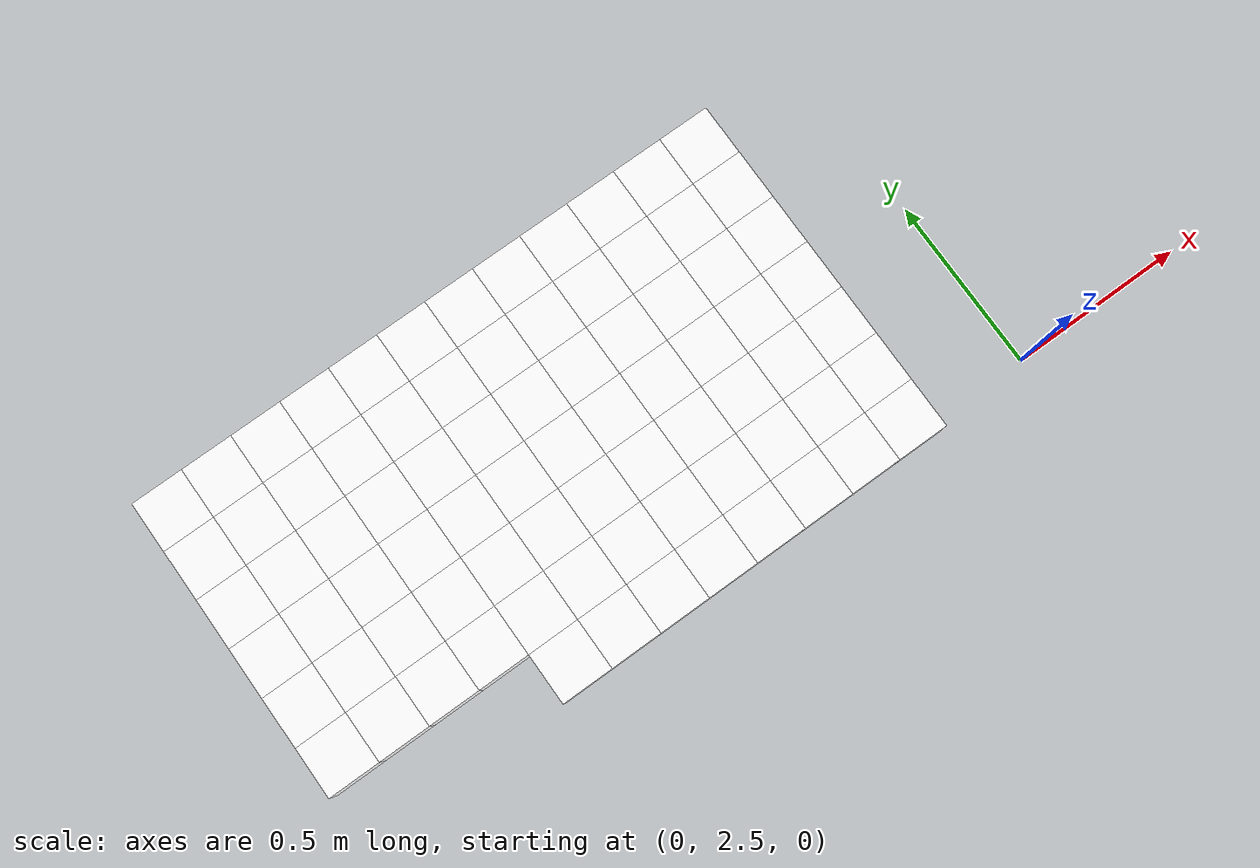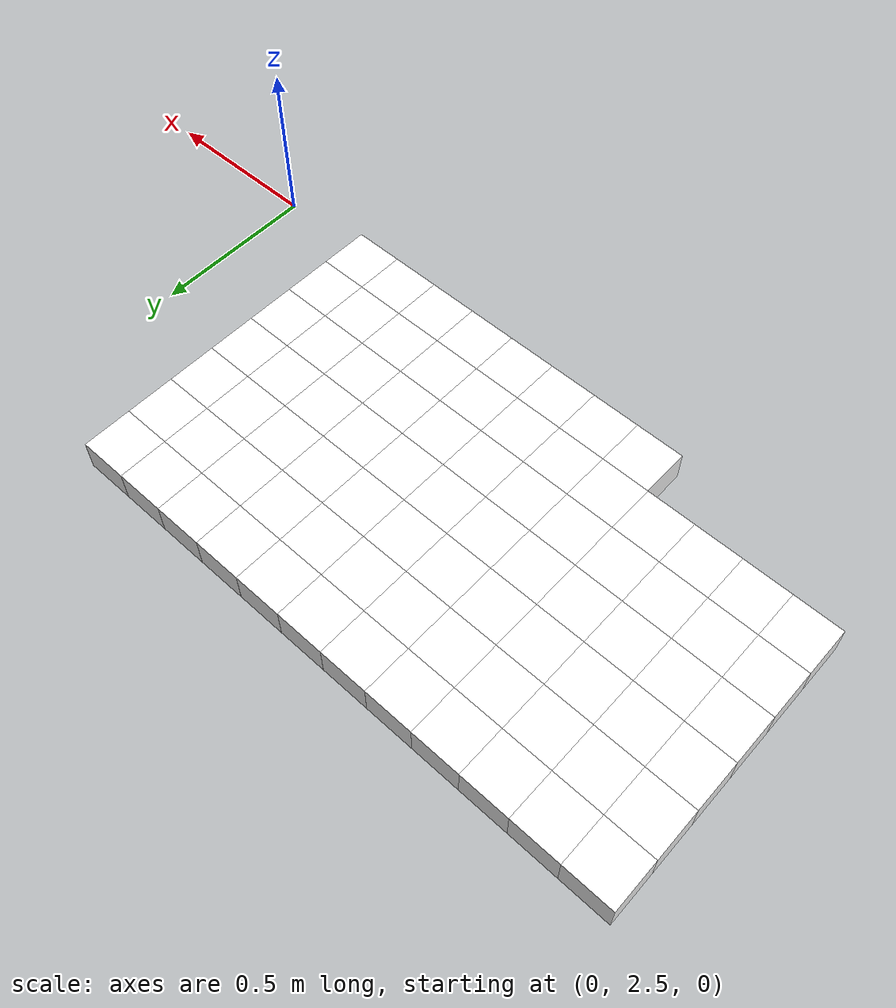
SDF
<sdf version="1.7">
 <world name="default">
  <include><uri>model://sun</uri></include>
  <model name="static_environment">
   <static>true</static>
   <link name="region_264">
    <pose>-1.4 2.5499999999999994 0.0 0.0 0.0 0.0</pose>
    <collision name="region_264_collision">
     <geometry><box><size>0.15 0.15 0.1</size></box></geometry>
     <surface><friction><ode><mu>1.0</mu><mu2>1.0</mu2></ode></friction></surface>
    </collision>
    <visual name="region_264_visual">
     <geometry><box><size>0.15 0.15 0.1</size></box></geometry>
     <material><ambient>1.0 1.0 1.0 1.0</ambient><diffuse>1.0 1.0 1.0 1.0</diffuse></material>
    </visual>
   </link>
   <link name="region_265">
    <pose>-1.25 2.5499999999999994 0.0 0.0 0.0 0.0</pose>
    <collision name="region_265_collision">
     <geometry><box><size>0.15 0.15 0.1</size></box></geometry>
     <surface><friction><ode><mu>1.0</mu><mu2>1.0</mu2></ode></friction></surface>
    </collision>
    <visual name="region_265_visual">
     <geometry><box><size>0.15 0.15 0.1</size></box></geometry>
     <material><ambient>1.0 1.0 1.0 1.0</ambient><diffuse>1.0 1.0 1.0 1.0</diffuse></material>
    </visual>
   </link>
   <link name="region_266">
    <pose>-1.1 2.5499999999999994 0.0 0.0 0.0 0.0</pose>
    <collision name="region_266_collision">
     <geometry><box><size>0.15 0.15 0.1</size></box></geometry>
     <surface><friction><ode><mu>1.0</mu><mu2>1.0</mu2></ode></friction></surface>
    </collision>
    <visual name="region_266_visual">
     <geometry><box><size>0.15 0.15 0.1</size></box></geometry>
     <material><ambient>1.0 1.0 1.0 1.0</ambient><diffuse>1.0 1.0 1.0 1.0</diffuse></material>
    </visual>
   </link>
   <link name="region_267">
    <pose>-0.95 2.5499999999999994 0.0 0.0 0.0 0.0</pose>
    <collision name="region_267_collision">
     <geometry><box><size>0.15 0.15 0.1</size></box></geometry>
     <surface><friction><ode><mu>1.0</mu><mu2>1.0</mu2></ode></friction></surface>
    </collision>
    <visual name="region_267_visual">
     <geometry><box><size>0.15 0.15 0.1</size></box></geometry>
     <material><ambient>1.0 1.0 1.0 1.0</ambient><diffuse>1.0 1.0 1.0 1.0</diffuse></material>
    </visual>
   </link>
   <link name="region_268">
    <pose>-0.8 2.5499999999999994 0.0 0.0 0.0 0.0</pose>
    <collision name="region_268_collision">
     <geometry><box><size>0.15 0.15 0.1</size></box></geometry>
     <surface><friction><ode><mu>1.0</mu><mu2>1.0</mu2></ode></friction></surface>
    </collision>
    <visual name="region_268_visual">
     <geometry><box><size>0.15 0.15 0.1</size></box></geometry>
     <material><ambient>1.0 1.0 1.0 1.0</ambient><diffuse>1.0 1.0 1.0 1.0</diffuse></material>
    </visual>
   </link>
   <link name="region_269">
    <pose>-0.6500000000000001 2.5499999999999994 0.0 0.0 0.0 0.0</pose>
    <collision name="region_269_collision">
     <geometry><box><size>0.15 0.15 0.1</size></box></geometry>
     <surface><friction><ode><mu>1.0</mu><mu2>1.0</mu2></ode></friction></surface>
    </collision>
    <visual name="region_269_visual">
     <geometry><box><size>0.15 0.15 0.1</size></box></geometry>
     <material><ambient>1.0 1.0 1.0 1.0</ambient><diffuse>1.0 1.0 1.0 1.0</diffuse></material>
    </visual>
   </link>
   <link name="region_270">
    <pose>-0.5000000000000002 2.5499999999999994 0.0 0.0 0.0 0.0</pose>
    <collision name="region_270_collision">
     <geometry><box><size>0.15 0.15 0.1</size></box></geometry>
     <surface><friction><ode><mu>1.0</mu><mu2>1.0</mu2></ode></friction></surface>
    </collision>
    <visual name="region_270_visual">
     <geometry><box><size>0.15 0.15 0.1</size></box></geometry>
     <material><ambient>1.0 1.0 1.0 1.0</ambient><diffuse>1.0 1.0 1.0 1.0</diffuse></material>
    </visual>
   </link>
   <link name="region_271">
    <pose>-0.3500000000000003 2.5499999999999994 0.0 0.0 0.0 0.0</pose>
    <collision name="region_271_collision">
     <geometry><box><size>0.15 0.15 0.1</size></box></geometry>
     <surface><friction><ode><mu>1.0</mu><mu2>1.0</mu2></ode></friction></surface>
    </collision>
    <visual name="region_271_visual">
     <geometry><box><size>0.15 0.15 0.1</size></box></geometry>
     <material><ambient>1.0 1.0 1.0 1.0</ambient><diffuse>1.0 1.0 1.0 1.0</diffuse></material>
    </visual>
   </link>
   <link name="region_280">
    <pose>-2.0 2.6999999999999997 0.0 0.0 0.0 0.0</pose>
    <collision name="region_280_collision">
     <geometry><box><size>0.15 0.15 0.1</size></box></geometry>
     <surface><friction><ode><mu>1.0</mu><mu2>1.0</mu2></ode></friction></surface>
    </collision>
    <visual name="region_280_visual">
     <geometry><box><size>0.15 0.15 0.1</size></box></geometry>
     <material><ambient>1.0 1.0 1.0 1.0</ambient><diffuse>1.0 1.0 1.0 1.0</diffuse></material>
    </visual>
   </link>
   <link name="region_281">
    <pose>-1.85 2.6999999999999997 0.0 0.0 0.0 0.0</pose>
    <collision name="region_281_collision">
     <geometry><box><size>0.15 0.15 0.1</size></box></geometry>
     <surface><friction><ode><mu>1.0</mu><mu2>1.0</mu2></ode></friction></surface>
    </collision>
    <visual name="region_281_visual">
     <geometry><box><size>0.15 0.15 0.1</size></box></geometry>
     <material><ambient>1.0 1.0 1.0 1.0</ambient><diffuse>1.0 1.0 1.0 1.0</diffuse></material>
    </visual>
   </link>
   <link name="region_282">
    <pose>-1.7 2.6999999999999997 0.0 0.0 0.0 0.0</pose>
    <collision name="region_282_collision">
     <geometry><box><size>0.15 0.15 0.1</size></box></geometry>
     <surface><friction><ode><mu>1.0</mu><mu2>1.0</mu2></ode></friction></surface>
    </collision>
    <visual name="region_282_visual">
     <geometry><box><size>0.15 0.15 0.1</size></box></geometry>
     <material><ambient>1.0 1.0 1.0 1.0</ambient><diffuse>1.0 1.0 1.0 1.0</diffuse></material>
    </visual>
   </link>
   <link name="region_283">
    <pose>-1.55 2.6999999999999997 0.0 0.0 0.0 0.0</pose>
    <collision name="region_283_collision">
     <geometry><box><size>0.15 0.15 0.1</size></box></geometry>
     <surface><friction><ode><mu>1.0</mu><mu2>1.0</mu2></ode></friction></surface>
    </collision>
    <visual name="region_283_visual">
     <geometry><box><size>0.15 0.15 0.1</size></box></geometry>
     <material><ambient>1.0 1.0 1.0 1.0</ambient><diffuse>1.0 1.0 1.0 1.0</diffuse></material>
    </visual>
   </link>
   <link name="region_284">
    <pose>-1.4 2.6999999999999997 0.0 0.0 0.0 0.0</pose>
    <collision name="region_284_collision">
     <geometry><box><size>0.15 0.15 0.1</size></box></geometry>
     <surface><friction><ode><mu>1.0</mu><mu2>1.0</mu2></ode></friction></surface>
    </collision>
    <visual name="region_284_visual">
     <geometry><box><size>0.15 0.15 0.1</size></box></geometry>
     <material><ambient>1.0 1.0 1.0 1.0</ambient><diffuse>1.0 1.0 1.0 1.0</diffuse></material>
    </visual>
   </link>
   <link name="region_285">
    <pose>-1.25 2.6999999999999997 0.0 0.0 0.0 0.0</pose>
    <collision name="region_285_collision">
     <geometry><box><size>0.15 0.15 0.1</size></box></geometry>
     <surface><friction><ode><mu>1.0</mu><mu2>1.0</mu2></ode></friction></surface>
    </collision>
    <visual name="region_285_visual">
     <geometry><box><size>0.15 0.15 0.1</size></box></geometry>
     <material><ambient>1.0 1.0 1.0 1.0</ambient><diffuse>1.0 1.0 1.0 1.0</diffuse></material>
    </visual>
   </link>
   <link name="region_286">
    <pose>-1.1 2.6999999999999997 0.0 0.0 0.0 0.0</pose>
    <collision name="region_286_collision">
     <geometry><box><size>0.15 0.15 0.1</size></box></geometry>
     <surface><friction><ode><mu>1.0</mu><mu2>1.0</mu2></ode></friction></surface>
    </collision>
    <visual name="region_286_visual">
     <geometry><box><size>0.15 0.15 0.1</size></box></geometry>
     <material><ambient>1.0 1.0 1.0 1.0</ambient><diffuse>1.0 1.0 1.0 1.0</diffuse></material>
    </visual>
   </link>
   <link name="region_287">
    <pose>-0.95 2.6999999999999997 0.0 0.0 0.0 0.0</pose>
    <collision name="region_287_collision">
     <geometry><box><size>0.15 0.15 0.1</size></box></geometry>
     <surface><friction><ode><mu>1.0</mu><mu2>1.0</mu2></ode></friction></surface>
    </collision>
    <visual name="region_287_visual">
     <geometry><box><size>0.15 0.15 0.1</size></box></geometry>
     <material><ambient>1.0 1.0 1.0 1.0</ambient><diffuse>1.0 1.0 1.0 1.0</diffuse></material>
    </visual>
   </link>
   <link name="region_288">
    <pose>-0.8 2.6999999999999997 0.0 0.0 0.0 0.0</pose>
    <collision name="region_288_collision">
     <geometry><box><size>0.15 0.15 0.1</size></box></geometry>
     <surface><friction><ode><mu>1.0</mu><mu2>1.0</mu2></ode></friction></surface>
    </collision>
    <visual name="region_288_visual">
     <geometry><box><size>0.15 0.15 0.1</size></box></geometry>
     <material><ambient>1.0 1.0 1.0 1.0</ambient><diffuse>1.0 1.0 1.0 1.0</diffuse></material>
    </visual>
   </link>
   <link name="region_289">
    <pose>-0.6500000000000001 2.6999999999999997 0.0 0.0 0.0 0.0</pose>
    <collision name="region_289_collision">
     <geometry><box><size>0.15 0.15 0.1</size></box></geometry>
     <surface><friction><ode><mu>1.0</mu><mu2>1.0</mu2></ode></friction></surface>
    </collision>
    <visual name="region_289_visual">
     <geometry><box><size>0.15 0.15 0.1</size></box></geometry>
     <material><ambient>1.0 1.0 1.0 1.0</ambient><diffuse>1.0 1.0 1.0 1.0</diffuse></material>
    </visual>
   </link>
   <link name="region_290">
    <pose>-0.5000000000000002 2.6999999999999997 0.0 0.0 0.0 0.0</pose>
    <collision name="region_290_collision">
     <geometry><box><size>0.15 0.15 0.1</size></box></geometry>
     <surface><friction><ode><mu>1.0</mu><mu2>1.0</mu2></ode></friction></surface>
    </collision>
    <visual name="region_290_visual">
     <geometry><box><size>0.15 0.15 0.1</size></box></geometry>
     <material><ambient>1.0 1.0 1.0 1.0</ambient><diffuse>1.0 1.0 1.0 1.0</diffuse></material>
    </visual>
   </link>
   <link name="region_291">
    <pose>-0.3500000000000003 2.6999999999999997 0.0 0.0 0.0 0.0</pose>
    <collision name="region_291_collision">
     <geometry><box><size>0.15 0.15 0.1</size></box></geometry>
     <surface><friction><ode><mu>1.0</mu><mu2>1.0</mu2></ode></friction></surface>
    </collision>
    <visual name="region_291_visual">
     <geometry><box><size>0.15 0.15 0.1</size></box></geometry>
     <material><ambient>1.0 1.0 1.0 1.0</ambient><diffuse>1.0 1.0 1.0 1.0</diffuse></material>
    </visual>
   </link>
   <link name="region_300">
    <pose>-2.0 2.8499999999999996 0.0 0.0 0.0 0.0</pose>
    <collision name="region_300_collision">
     <geometry><box><size>0.15 0.15 0.1</size></box></geometry>
     <surface><friction><ode><mu>1.0</mu><mu2>1.0</mu2></ode></friction></surface>
    </collision>
    <visual name="region_300_visual">
     <geometry><box><size>0.15 0.15 0.1</size></box></geometry>
     <material><ambient>1.0 1.0 1.0 1.0</ambient><diffuse>1.0 1.0 1.0 1.0</diffuse></material>
    </visual>
   </link>
   <link name="region_301">
    <pose>-1.85 2.8499999999999996 0.0 0.0 0.0 0.0</pose>
    <collision name="region_301_collision">
     <geometry><box><size>0.15 0.15 0.1</size></box></geometry>
     <surface><friction><ode><mu>1.0</mu><mu2>1.0</mu2></ode></friction></surface>
    </collision>
    <visual name="region_301_visual">
     <geometry><box><size>0.15 0.15 0.1</size></box></geometry>
     <material><ambient>1.0 1.0 1.0 1.0</ambient><diffuse>1.0 1.0 1.0 1.0</diffuse></material>
    </visual>
   </link>
   <link name="region_302">
    <pose>-1.7 2.8499999999999996 0.0 0.0 0.0 0.0</pose>
    <collision name="region_302_collision">
     <geometry><box><size>0.15 0.15 0.1</size></box></geometry>
     <surface><friction><ode><mu>1.0</mu><mu2>1.0</mu2></ode></friction></surface>
    </collision>
    <visual name="region_302_visual">
     <geometry><box><size>0.15 0.15 0.1</size></box></geometry>
     <material><ambient>1.0 1.0 1.0 1.0</ambient><diffuse>1.0 1.0 1.0 1.0</diffuse></material>
    </visual>
   </link>
   <link name="region_303">
    <pose>-1.55 2.8499999999999996 0.0 0.0 0.0 0.0</pose>
    <collision name="region_303_collision">
     <geometry><box><size>0.15 0.15 0.1</size></box></geometry>
     <surface><friction><ode><mu>1.0</mu><mu2>1.0</mu2></ode></friction></surface>
    </collision>
    <visual name="region_303_visual">
     <geometry><box><size>0.15 0.15 0.1</size></box></geometry>
     <material><ambient>1.0 1.0 1.0 1.0</ambient><diffuse>1.0 1.0 1.0 1.0</diffuse></material>
    </visual>
   </link>
   <link name="region_304">
    <pose>-1.4 2.8499999999999996 0.0 0.0 0.0 0.0</pose>
    <collision name="region_304_collision">
     <geometry><box><size>0.15 0.15 0.1</size></box></geometry>
     <surface><friction><ode><mu>1.0</mu><mu2>1.0</mu2></ode></friction></surface>
    </collision>
    <visual name="region_304_visual">
     <geometry><box><size>0.15 0.15 0.1</size></box></geometry>
     <material><ambient>1.0 1.0 1.0 1.0</ambient><diffuse>1.0 1.0 1.0 1.0</diffuse></material>
    </visual>
   </link>
   <link name="region_305">
    <pose>-1.25 2.8499999999999996 0.0 0.0 0.0 0.0</pose>
    <collision name="region_305_collision">
     <geometry><box><size>0.15 0.15 0.1</size></box></geometry>
     <surface><friction><ode><mu>1.0</mu><mu2>1.0</mu2></ode></friction></surface>
    </collision>
    <visual name="region_305_visual">
     <geometry><box><size>0.15 0.15 0.1</size></box></geometry>
     <material><ambient>1.0 1.0 1.0 1.0</ambient><diffuse>1.0 1.0 1.0 1.0</diffuse></material>
    </visual>
   </link>
   <link name="region_306">
    <pose>-1.1 2.8499999999999996 0.0 0.0 0.0 0.0</pose>
    <collision name="region_306_collision">
     <geometry><box><size>0.15 0.15 0.1</size></box></geometry>
     <surface><friction><ode><mu>1.0</mu><mu2>1.0</mu2></ode></friction></surface>
    </collision>
    <visual name="region_306_visual">
     <geometry><box><size>0.15 0.15 0.1</size></box></geometry>
     <material><ambient>1.0 1.0 1.0 1.0</ambient><diffuse>1.0 1.0 1.0 1.0</diffuse></material>
    </visual>
   </link>
   <link name="region_307">
    <pose>-0.95 2.8499999999999996 0.0 0.0 0.0 0.0</pose>
    <collision name="region_307_collision">
     <geometry><box><size>0.15 0.15 0.1</size></box></geometry>
     <surface><friction><ode><mu>1.0</mu><mu2>1.0</mu2></ode></friction></surface>
    </collision>
    <visual name="region_307_visual">
     <geometry><box><size>0.15 0.15 0.1</size></box></geometry>
     <material><ambient>1.0 1.0 1.0 1.0</ambient><diffuse>1.0 1.0 1.0 1.0</diffuse></material>
    </visual>
   </link>
   <link name="region_308">
    <pose>-0.8 2.8499999999999996 0.0 0.0 0.0 0.0</pose>
    <collision name="region_308_collision">
     <geometry><box><size>0.15 0.15 0.1</size></box></geometry>
     <surface><friction><ode><mu>1.0</mu><mu2>1.0</mu2></ode></friction></surface>
    </collision>
    <visual name="region_308_visual">
     <geometry><box><size>0.15 0.15 0.1</size></box></geometry>
     <material><ambient>1.0 1.0 1.0 1.0</ambient><diffuse>1.0 1.0 1.0 1.0</diffuse></material>
    </visual>
   </link>
   <link name="region_309">
    <pose>-0.6500000000000001 2.8499999999999996 0.0 0.0 0.0 0.0</pose>
    <collision name="region_309_collision">
     <geometry><box><size>0.15 0.15 0.1</size></box></geometry>
     <surface><friction><ode><mu>1.0</mu><mu2>1.0</mu2></ode></friction></surface>
    </collision>
    <visual name="region_309_visual">
     <geometry><box><size>0.15 0.15 0.1</size></box></geometry>
     <material><ambient>1.0 1.0 1.0 1.0</ambient><diffuse>1.0 1.0 1.0 1.0</diffuse></material>
    </visual>
   </link>
   <link name="region_310">
    <pose>-0.5000000000000002 2.8499999999999996 0.0 0.0 0.0 0.0</pose>
    <collision name="region_310_collision">
     <geometry><box><size>0.15 0.15 0.1</size></box></geometry>
     <surface><friction><ode><mu>1.0</mu><mu2>1.0</mu2></ode></friction></surface>
    </collision>
    <visual name="region_310_visual">
     <geometry><box><size>0.15 0.15 0.1</size></box></geometry>
     <material><ambient>1.0 1.0 1.0 1.0</ambient><diffuse>1.0 1.0 1.0 1.0</diffuse></material>
    </visual>
   </link>
   <link name="region_311">
    <pose>-0.3500000000000003 2.8499999999999996 0.0 0.0 0.0 0.0</pose>
    <collision name="region_311_collision">
     <geometry><box><size>0.15 0.15 0.1</size></box></geometry>
     <surface><friction><ode><mu>1.0</mu><mu2>1.0</mu2></ode></friction></surface>
    </collision>
    <visual name="region_311_visual">
     <geometry><box><size>0.15 0.15 0.1</size></box></geometry>
     <material><ambient>1.0 1.0 1.0 1.0</ambient><diffuse>1.0 1.0 1.0 1.0</diffuse></material>
    </visual>
   </link>
   <link name="region_320">
    <pose>-2.0 2.9999999999999996 0.0 0.0 0.0 0.0</pose>
    <collision name="region_320_collision">
     <geometry><box><size>0.15 0.15 0.1</size></box></geometry>
     <surface><friction><ode><mu>1.0</mu><mu2>1.0</mu2></ode></friction></surface>
    </collision>
    <visual name="region_320_visual">
     <geometry><box><size>0.15 0.15 0.1</size></box></geometry>
     <material><ambient>1.0 1.0 1.0 1.0</ambient><diffuse>1.0 1.0 1.0 1.0</diffuse></material>
    </visual>
   </link>
   <link name="region_321">
    <pose>-1.85 2.9999999999999996 0.0 0.0 0.0 0.0</pose>
    <collision name="region_321_collision">
     <geometry><box><size>0.15 0.15 0.1</size></box></geometry>
     <surface><friction><ode><mu>1.0</mu><mu2>1.0</mu2></ode></friction></surface>
    </collision>
    <visual name="region_321_visual">
     <geometry><box><size>0.15 0.15 0.1</size></box></geometry>
     <material><ambient>1.0 1.0 1.0 1.0</ambient><diffuse>1.0 1.0 1.0 1.0</diffuse></material>
    </visual>
   </link>
   <link name="region_322">
    <pose>-1.7 2.9999999999999996 0.0 0.0 0.0 0.0</pose>
    <collision name="region_322_collision">
     <geometry><box><size>0.15 0.15 0.1</size></box></geometry>
     <surface><friction><ode><mu>1.0</mu><mu2>1.0</mu2></ode></friction></surface>
    </collision>
    <visual name="region_322_visual">
     <geometry><box><size>0.15 0.15 0.1</size></box></geometry>
     <material><ambient>1.0 1.0 1.0 1.0</ambient><diffuse>1.0 1.0 1.0 1.0</diffuse></material>
    </visual>
   </link>
   <link name="region_323">
    <pose>-1.55 2.9999999999999996 0.0 0.0 0.0 0.0</pose>
    <collision name="region_323_collision">
     <geometry><box><size>0.15 0.15 0.1</size></box></geometry>
     <surface><friction><ode><mu>1.0</mu><mu2>1.0</mu2></ode></friction></surface>
    </collision>
    <visual name="region_323_visual">
     <geometry><box><size>0.15 0.15 0.1</size></box></geometry>
     <material><ambient>1.0 1.0 1.0 1.0</ambient><diffuse>1.0 1.0 1.0 1.0</diffuse></material>
    </visual>
   </link>
   <link name="region_324">
    <pose>-1.4 2.9999999999999996 0.0 0.0 0.0 0.0</pose>
    <collision name="region_324_collision">
     <geometry><box><size>0.15 0.15 0.1</size></box></geometry>
     <surface><friction><ode><mu>1.0</mu><mu2>1.0</mu2></ode></friction></surface>
    </collision>
    <visual name="region_324_visual">
     <geometry><box><size>0.15 0.15 0.1</size></box></geometry>
     <material><ambient>1.0 1.0 1.0 1.0</ambient><diffuse>1.0 1.0 1.0 1.0</diffuse></material>
    </visual>
   </link>
   <link name="region_325">
    <pose>-1.25 2.9999999999999996 0.0 0.0 0.0 0.0</pose>
    <collision name="region_325_collision">
     <geometry><box><size>0.15 0.15 0.1</size></box></geometry>
     <surface><friction><ode><mu>1.0</mu><mu2>1.0</mu2></ode></friction></surface>
    </collision>
    <visual name="region_325_visual">
     <geometry><box><size>0.15 0.15 0.1</size></box></geometry>
     <material><ambient>1.0 1.0 1.0 1.0</ambient><diffuse>1.0 1.0 1.0 1.0</diffuse></material>
    </visual>
   </link>
   <link name="region_326">
    <pose>-1.1 2.9999999999999996 0.0 0.0 0.0 0.0</pose>
    <collision name="region_326_collision">
     <geometry><box><size>0.15 0.15 0.1</size></box></geometry>
     <surface><friction><ode><mu>1.0</mu><mu2>1.0</mu2></ode></friction></surface>
    </collision>
    <visual name="region_326_visual">
     <geometry><box><size>0.15 0.15 0.1</size></box></geometry>
     <material><ambient>1.0 1.0 1.0 1.0</ambient><diffuse>1.0 1.0 1.0 1.0</diffuse></material>
    </visual>
   </link>
   <link name="region_327">
    <pose>-0.95 2.9999999999999996 0.0 0.0 0.0 0.0</pose>
    <collision name="region_327_collision">
     <geometry><box><size>0.15 0.15 0.1</size></box></geometry>
     <surface><friction><ode><mu>1.0</mu><mu2>1.0</mu2></ode></friction></surface>
    </collision>
    <visual name="region_327_visual">
     <geometry><box><size>0.15 0.15 0.1</size></box></geometry>
     <material><ambient>1.0 1.0 1.0 1.0</ambient><diffuse>1.0 1.0 1.0 1.0</diffuse></material>
    </visual>
   </link>
   <link name="region_328">
    <pose>-0.8 2.9999999999999996 0.0 0.0 0.0 0.0</pose>
    <collision name="region_328_collision">
     <geometry><box><size>0.15 0.15 0.1</size></box></geometry>
     <surface><friction><ode><mu>1.0</mu><mu2>1.0</mu2></ode></friction></surface>
    </collision>
    <visual name="region_328_visual">
     <geometry><box><size>0.15 0.15 0.1</size></box></geometry>
     <material><ambient>1.0 1.0 1.0 1.0</ambient><diffuse>1.0 1.0 1.0 1.0</diffuse></material>
    </visual>
   </link>
   <link name="region_329">
    <pose>-0.6500000000000001 2.9999999999999996 0.0 0.0 0.0 0.0</pose>
    <collision name="region_329_collision">
     <geometry><box><size>0.15 0.15 0.1</size></box></geometry>
     <surface><friction><ode><mu>1.0</mu><mu2>1.0</mu2></ode></friction></surface>
    </collision>
    <visual name="region_329_visual">
     <geometry><box><size>0.15 0.15 0.1</size></box></geometry>
     <material><ambient>1.0 1.0 1.0 1.0</ambient><diffuse>1.0 1.0 1.0 1.0</diffuse></material>
    </visual>
   </link>
   <link name="region_330">
    <pose>-0.5000000000000002 2.9999999999999996 0.0 0.0 0.0 0.0</pose>
    <collision name="region_330_collision">
     <geometry><box><size>0.15 0.15 0.1</size></box></geometry>
     <surface><friction><ode><mu>1.0</mu><mu2>1.0</mu2></ode></friction></surface>
    </collision>
    <visual name="region_330_visual">
     <geometry><box><size>0.15 0.15 0.1</size></box></geometry>
     <material><ambient>1.0 1.0 1.0 1.0</ambient><diffuse>1.0 1.0 1.0 1.0</diffuse></material>
    </visual>
   </link>
   <link name="region_331">
    <pose>-0.3500000000000003 2.9999999999999996 0.0 0.0 0.0 0.0</pose>
    <collision name="region_331_collision">
     <geometry><box><size>0.15 0.15 0.1</size></box></geometry>
     <surface><friction><ode><mu>1.0</mu><mu2>1.0</mu2></ode></friction></surface>
    </collision>
    <visual name="region_331_visual">
     <geometry><box><size>0.15 0.15 0.1</size></box></geometry>
     <material><ambient>1.0 1.0 1.0 1.0</ambient><diffuse>1.0 1.0 1.0 1.0</diffuse></material>
    </visual>
   </link>
   <link name="region_340">
    <pose>-2.0 3.1499999999999995 0.0 0.0 0.0 0.0</pose>
    <collision name="region_340_collision">
     <geometry><box><size>0.15 0.15 0.1</size></box></geometry>
     <surface><friction><ode><mu>1.0</mu><mu2>1.0</mu2></ode></friction></surface>
    </collision>
    <visual name="region_340_visual">
     <geometry><box><size>0.15 0.15 0.1</size></box></geometry>
     <material><ambient>1.0 1.0 1.0 1.0</ambient><diffuse>1.0 1.0 1.0 1.0</diffuse></material>
    </visual>
   </link>
   <link name="region_341">
    <pose>-1.85 3.1499999999999995 0.0 0.0 0.0 0.0</pose>
    <collision name="region_341_collision">
     <geometry><box><size>0.15 0.15 0.1</size></box></geometry>
     <surface><friction><ode><mu>1.0</mu><mu2>1.0</mu2></ode></friction></surface>
    </collision>
    <visual name="region_341_visual">
     <geometry><box><size>0.15 0.15 0.1</size></box></geometry>
     <material><ambient>1.0 1.0 1.0 1.0</ambient><diffuse>1.0 1.0 1.0 1.0</diffuse></material>
    </visual>
   </link>
   <link name="region_342">
    <pose>-1.7 3.1499999999999995 0.0 0.0 0.0 0.0</pose>
    <collision name="region_342_collision">
     <geometry><box><size>0.15 0.15 0.1</size></box></geometry>
     <surface><friction><ode><mu>1.0</mu><mu2>1.0</mu2></ode></friction></surface>
    </collision>
    <visual name="region_342_visual">
     <geometry><box><size>0.15 0.15 0.1</size></box></geometry>
     <material><ambient>1.0 1.0 1.0 1.0</ambient><diffuse>1.0 1.0 1.0 1.0</diffuse></material>
    </visual>
   </link>
   <link name="region_343">
    <pose>-1.55 3.1499999999999995 0.0 0.0 0.0 0.0</pose>
    <collision name="region_343_collision">
     <geometry><box><size>0.15 0.15 0.1</size></box></geometry>
     <surface><friction><ode><mu>1.0</mu><mu2>1.0</mu2></ode></friction></surface>
    </collision>
    <visual name="region_343_visual">
     <geometry><box><size>0.15 0.15 0.1</size></box></geometry>
     <material><ambient>1.0 1.0 1.0 1.0</ambient><diffuse>1.0 1.0 1.0 1.0</diffuse></material>
    </visual>
   </link>
   <link name="region_344">
    <pose>-1.4 3.1499999999999995 0.0 0.0 0.0 0.0</pose>
    <collision name="region_344_collision">
     <geometry><box><size>0.15 0.15 0.1</size></box></geometry>
     <surface><friction><ode><mu>1.0</mu><mu2>1.0</mu2></ode></friction></surface>
    </collision>
    <visual name="region_344_visual">
     <geometry><box><size>0.15 0.15 0.1</size></box></geometry>
     <material><ambient>1.0 1.0 1.0 1.0</ambient><diffuse>1.0 1.0 1.0 1.0</diffuse></material>
    </visual>
   </link>
   <link name="region_345">
    <pose>-1.25 3.1499999999999995 0.0 0.0 0.0 0.0</pose>
    <collision name="region_345_collision">
     <geometry><box><size>0.15 0.15 0.1</size></box></geometry>
     <surface><friction><ode><mu>1.0</mu><mu2>1.0</mu2></ode></friction></surface>
    </collision>
    <visual name="region_345_visual">
     <geometry><box><size>0.15 0.15 0.1</size></box></geometry>
     <material><ambient>1.0 1.0 1.0 1.0</ambient><diffuse>1.0 1.0 1.0 1.0</diffuse></material>
    </visual>
   </link>
   <link name="region_346">
    <pose>-1.1 3.1499999999999995 0.0 0.0 0.0 0.0</pose>
    <collision name="region_346_collision">
     <geometry><box><size>0.15 0.15 0.1</size></box></geometry>
     <surface><friction><ode><mu>1.0</mu><mu2>1.0</mu2></ode></friction></surface>
    </collision>
    <visual name="region_346_visual">
     <geometry><box><size>0.15 0.15 0.1</size></box></geometry>
     <material><ambient>1.0 1.0 1.0 1.0</ambient><diffuse>1.0 1.0 1.0 1.0</diffuse></material>
    </visual>
   </link>
   <link name="region_347">
    <pose>-0.95 3.1499999999999995 0.0 0.0 0.0 0.0</pose>
    <collision name="region_347_collision">
     <geometry><box><size>0.15 0.15 0.1</size></box></geometry>
     <surface><friction><ode><mu>1.0</mu><mu2>1.0</mu2></ode></friction></surface>
    </collision>
    <visual name="region_347_visual">
     <geometry><box><size>0.15 0.15 0.1</size></box></geometry>
     <material><ambient>1.0 1.0 1.0 1.0</ambient><diffuse>1.0 1.0 1.0 1.0</diffuse></material>
    </visual>
   </link>
   <link name="region_348">
    <pose>-0.8 3.1499999999999995 0.0 0.0 0.0 0.0</pose>
    <collision name="region_348_collision">
     <geometry><box><size>0.15 0.15 0.1</size></box></geometry>
     <surface><friction><ode><mu>1.0</mu><mu2>1.0</mu2></ode></friction></surface>
    </collision>
    <visual name="region_348_visual">
     <geometry><box><size>0.15 0.15 0.1</size></box></geometry>
     <material><ambient>1.0 1.0 1.0 1.0</ambient><diffuse>1.0 1.0 1.0 1.0</diffuse></material>
    </visual>
   </link>
   <link name="region_349">
    <pose>-0.6500000000000001 3.1499999999999995 0.0 0.0 0.0 0.0</pose>
    <collision name="region_349_collision">
     <geometry><box><size>0.15 0.15 0.1</size></box></geometry>
     <surface><friction><ode><mu>1.0</mu><mu2>1.0</mu2></ode></friction></surface>
    </collision>
    <visual name="region_349_visual">
     <geometry><box><size>0.15 0.15 0.1</size></box></geometry>
     <material><ambient>1.0 1.0 1.0 1.0</ambient><diffuse>1.0 1.0 1.0 1.0</diffuse></material>
    </visual>
   </link>
   <link name="region_350">
    <pose>-0.5000000000000002 3.1499999999999995 0.0 0.0 0.0 0.0</pose>
    <collision name="region_350_collision">
     <geometry><box><size>0.15 0.15 0.1</size></box></geometry>
     <surface><friction><ode><mu>1.0</mu><mu2>1.0</mu2></ode></friction></surface>
    </collision>
    <visual name="region_350_visual">
     <geometry><box><size>0.15 0.15 0.1</size></box></geometry>
     <material><ambient>1.0 1.0 1.0 1.0</ambient><diffuse>1.0 1.0 1.0 1.0</diffuse></material>
    </visual>
   </link>
   <link name="region_351">
    <pose>-0.3500000000000003 3.1499999999999995 0.0 0.0 0.0 0.0</pose>
    <collision name="region_351_collision">
     <geometry><box><size>0.15 0.15 0.1</size></box></geometry>
     <surface><friction><ode><mu>1.0</mu><mu2>1.0</mu2></ode></friction></surface>
    </collision>
    <visual name="region_351_visual">
     <geometry><box><size>0.15 0.15 0.1</size></box></geometry>
     <material><ambient>1.0 1.0 1.0 1.0</ambient><diffuse>1.0 1.0 1.0 1.0</diffuse></material>
    </visual>
   </link>
   <link name="region_360">
    <pose>-2.0 3.2999999999999994 0.0 0.0 0.0 0.0</pose>
    <collision name="region_360_collision">
     <geometry><box><size>0.15 0.15 0.1</size></box></geometry>
     <surface><friction><ode><mu>1.0</mu><mu2>1.0</mu2></ode></friction></surface>
    </collision>
    <visual name="region_360_visual">
     <geometry><box><size>0.15 0.15 0.1</size></box></geometry>
     <material><ambient>1.0 1.0 1.0 1.0</ambient><diffuse>1.0 1.0 1.0 1.0</diffuse></material>
    </visual>
   </link>
   <link name="region_361">
    <pose>-1.85 3.2999999999999994 0.0 0.0 0.0 0.0</pose>
    <collision name="region_361_collision">
     <geometry><box><size>0.15 0.15 0.1</size></box></geometry>
     <surface><friction><ode><mu>1.0</mu><mu2>1.0</mu2></ode></friction></surface>
    </collision>
    <visual name="region_361_visual">
     <geometry><box><size>0.15 0.15 0.1</size></box></geometry>
     <material><ambient>1.0 1.0 1.0 1.0</ambient><diffuse>1.0 1.0 1.0 1.0</diffuse></material>
    </visual>
   </link>
   <link name="region_362">
    <pose>-1.7 3.2999999999999994 0.0 0.0 0.0 0.0</pose>
    <collision name="region_362_collision">
     <geometry><box><size>0.15 0.15 0.1</size></box></geometry>
     <surface><friction><ode><mu>1.0</mu><mu2>1.0</mu2></ode></friction></surface>
    </collision>
    <visual name="region_362_visual">
     <geometry><box><size>0.15 0.15 0.1</size></box></geometry>
     <material><ambient>1.0 1.0 1.0 1.0</ambient><diffuse>1.0 1.0 1.0 1.0</diffuse></material>
    </visual>
   </link>
   <link name="region_363">
    <pose>-1.55 3.2999999999999994 0.0 0.0 0.0 0.0</pose>
    <collision name="region_363_collision">
     <geometry><box><size>0.15 0.15 0.1</size></box></geometry>
     <surface><friction><ode><mu>1.0</mu><mu2>1.0</mu2></ode></friction></surface>
    </collision>
    <visual name="region_363_visual">
     <geometry><box><size>0.15 0.15 0.1</size></box></geometry>
     <material><ambient>1.0 1.0 1.0 1.0</ambient><diffuse>1.0 1.0 1.0 1.0</diffuse></material>
    </visual>
   </link>
   <link name="region_364">
    <pose>-1.4 3.2999999999999994 0.0 0.0 0.0 0.0</pose>
    <collision name="region_364_collision">
     <geometry><box><size>0.15 0.15 0.1</size></box></geometry>
     <surface><friction><ode><mu>1.0</mu><mu2>1.0</mu2></ode></friction></surface>
    </collision>
    <visual name="region_364_visual">
     <geometry><box><size>0.15 0.15 0.1</size></box></geometry>
     <material><ambient>1.0 1.0 1.0 1.0</ambient><diffuse>1.0 1.0 1.0 1.0</diffuse></material>
    </visual>
   </link>
   <link name="region_365">
    <pose>-1.25 3.2999999999999994 0.0 0.0 0.0 0.0</pose>
    <collision name="region_365_collision">
     <geometry><box><size>0.15 0.15 0.1</size></box></geometry>
     <surface><friction><ode><mu>1.0</mu><mu2>1.0</mu2></ode></friction></surface>
    </collision>
    <visual name="region_365_visual">
     <geometry><box><size>0.15 0.15 0.1</size></box></geometry>
     <material><ambient>1.0 1.0 1.0 1.0</ambient><diffuse>1.0 1.0 1.0 1.0</diffuse></material>
    </visual>
   </link>
   <link name="region_366">
    <pose>-1.1 3.2999999999999994 0.0 0.0 0.0 0.0</pose>
    <collision name="region_366_collision">
     <geometry><box><size>0.15 0.15 0.1</size></box></geometry>
     <surface><friction><ode><mu>1.0</mu><mu2>1.0</mu2></ode></friction></surface>
    </collision>
    <visual name="region_366_visual">
     <geometry><box><size>0.15 0.15 0.1</size></box></geometry>
     <material><ambient>1.0 1.0 1.0 1.0</ambient><diffuse>1.0 1.0 1.0 1.0</diffuse></material>
    </visual>
   </link>
   <link name="region_367">
    <pose>-0.95 3.2999999999999994 0.0 0.0 0.0 0.0</pose>
    <collision name="region_367_collision">
     <geometry><box><size>0.15 0.15 0.1</size></box></geometry>
     <surface><friction><ode><mu>1.0</mu><mu2>1.0</mu2></ode></friction></surface>
    </collision>
    <visual name="region_367_visual">
     <geometry><box><size>0.15 0.15 0.1</size></box></geometry>
     <material><ambient>1.0 1.0 1.0 1.0</ambient><diffuse>1.0 1.0 1.0 1.0</diffuse></material>
    </visual>
   </link>
   <link name="region_368">
    <pose>-0.8 3.2999999999999994 0.0 0.0 0.0 0.0</pose>
    <collision name="region_368_collision">
     <geometry><box><size>0.15 0.15 0.1</size></box></geometry>
     <surface><friction><ode><mu>1.0</mu><mu2>1.0</mu2></ode></friction></surface>
    </collision>
    <visual name="region_368_visual">
     <geometry><box><size>0.15 0.15 0.1</size></box></geometry>
     <material><ambient>1.0 1.0 1.0 1.0</ambient><diffuse>1.0 1.0 1.0 1.0</diffuse></material>
    </visual>
   </link>
   <link name="region_369">
    <pose>-0.6500000000000001 3.2999999999999994 0.0 0.0 0.0 0.0</pose>
    <collision name="region_369_collision">
     <geometry><box><size>0.15 0.15 0.1</size></box></geometry>
     <surface><friction><ode><mu>1.0</mu><mu2>1.0</mu2></ode></friction></surface>
    </collision>
    <visual name="region_369_visual">
     <geometry><box><size>0.15 0.15 0.1</size></box></geometry>
     <material><ambient>1.0 1.0 1.0 1.0</ambient><diffuse>1.0 1.0 1.0 1.0</diffuse></material>
    </visual>
   </link>
   <link name="region_370">
    <pose>-0.5000000000000002 3.2999999999999994 0.0 0.0 0.0 0.0</pose>
    <collision name="region_370_collision">
     <geometry><box><size>0.15 0.15 0.1</size></box></geometry>
     <surface><friction><ode><mu>1.0</mu><mu2>1.0</mu2></ode></friction></surface>
    </collision>
    <visual name="region_370_visual">
     <geometry><box><size>0.15 0.15 0.1</size></box></geometry>
     <material><ambient>1.0 1.0 1.0 1.0</ambient><diffuse>1.0 1.0 1.0 1.0</diffuse></material>
    </visual>
   </link>
   <link name="region_371">
    <pose>-0.3500000000000003 3.2999999999999994 0.0 0.0 0.0 0.0</pose>
    <collision name="region_371_collision">
     <geometry><box><size>0.15 0.15 0.1</size></box></geometry>
     <surface><friction><ode><mu>1.0</mu><mu2>1.0</mu2></ode></friction></surface>
    </collision>
    <visual name="region_371_visual">
     <geometry><box><size>0.15 0.15 0.1</size></box></geometry>
     <material><ambient>1.0 1.0 1.0 1.0</ambient><diffuse>1.0 1.0 1.0 1.0</diffuse></material>
    </visual>
   </link>
   <link name="region_380">
    <pose>-2.0 3.4499999999999993 0.0 0.0 0.0 0.0</pose>
    <collision name="region_380_collision">
     <geometry><box><size>0.15 0.15 0.1</size></box></geometry>
     <surface><friction><ode><mu>1.0</mu><mu2>1.0</mu2></ode></friction></surface>
    </collision>
    <visual name="region_380_visual">
     <geometry><box><size>0.15 0.15 0.1</size></box></geometry>
     <material><ambient>1.0 1.0 1.0 1.0</ambient><diffuse>1.0 1.0 1.0 1.0</diffuse></material>
    </visual>
   </link>
   <link name="region_381">
    <pose>-1.85 3.4499999999999993 0.0 0.0 0.0 0.0</pose>
    <collision name="region_381_collision">
     <geometry><box><size>0.15 0.15 0.1</size></box></geometry>
     <surface><friction><ode><mu>1.0</mu><mu2>1.0</mu2></ode></friction></surface>
    </collision>
    <visual name="region_381_visual">
     <geometry><box><size>0.15 0.15 0.1</size></box></geometry>
     <material><ambient>1.0 1.0 1.0 1.0</ambient><diffuse>1.0 1.0 1.0 1.0</diffuse></material>
    </visual>
   </link>
   <link name="region_382">
    <pose>-1.7 3.4499999999999993 0.0 0.0 0.0 0.0</pose>
    <collision name="region_382_collision">
     <geometry><box><size>0.15 0.15 0.1</size></box></geometry>
     <surface><friction><ode><mu>1.0</mu><mu2>1.0</mu2></ode></friction></surface>
    </collision>
    <visual name="region_382_visual">
     <geometry><box><size>0.15 0.15 0.1</size></box></geometry>
     <material><ambient>1.0 1.0 1.0 1.0</ambient><diffuse>1.0 1.0 1.0 1.0</diffuse></material>
    </visual>
   </link>
   <link name="region_383">
    <pose>-1.55 3.4499999999999993 0.0 0.0 0.0 0.0</pose>
    <collision name="region_383_collision">
     <geometry><box><size>0.15 0.15 0.1</size></box></geometry>
     <surface><friction><ode><mu>1.0</mu><mu2>1.0</mu2></ode></friction></surface>
    </collision>
    <visual name="region_383_visual">
     <geometry><box><size>0.15 0.15 0.1</size></box></geometry>
     <material><ambient>1.0 1.0 1.0 1.0</ambient><diffuse>1.0 1.0 1.0 1.0</diffuse></material>
    </visual>
   </link>
   <link name="region_384">
    <pose>-1.4 3.4499999999999993 0.0 0.0 0.0 0.0</pose>
    <collision name="region_384_collision">
     <geometry><box><size>0.15 0.15 0.1</size></box></geometry>
     <surface><friction><ode><mu>1.0</mu><mu2>1.0</mu2></ode></friction></surface>
    </collision>
    <visual name="region_384_visual">
     <geometry><box><size>0.15 0.15 0.1</size></box></geometry>
     <material><ambient>1.0 1.0 1.0 1.0</ambient><diffuse>1.0 1.0 1.0 1.0</diffuse></material>
    </visual>
   </link>
   <link name="region_385">
    <pose>-1.25 3.4499999999999993 0.0 0.0 0.0 0.0</pose>
    <collision name="region_385_collision">
     <geometry><box><size>0.15 0.15 0.1</size></box></geometry>
     <surface><friction><ode><mu>1.0</mu><mu2>1.0</mu2></ode></friction></surface>
    </collision>
    <visual name="region_385_visual">
     <geometry><box><size>0.15 0.15 0.1</size></box></geometry>
     <material><ambient>1.0 1.0 1.0 1.0</ambient><diffuse>1.0 1.0 1.0 1.0</diffuse></material>
    </visual>
   </link>
   <link name="region_386">
    <pose>-1.1 3.4499999999999993 0.0 0.0 0.0 0.0</pose>
    <collision name="region_386_collision">
     <geometry><box><size>0.15 0.15 0.1</size></box></geometry>
     <surface><friction><ode><mu>1.0</mu><mu2>1.0</mu2></ode></friction></surface>
    </collision>
    <visual name="region_386_visual">
     <geometry><box><size>0.15 0.15 0.1</size></box></geometry>
     <material><ambient>1.0 1.0 1.0 1.0</ambient><diffuse>1.0 1.0 1.0 1.0</diffuse></material>
    </visual>
   </link>
   <link name="region_387">
    <pose>-0.95 3.4499999999999993 0.0 0.0 0.0 0.0</pose>
    <collision name="region_387_collision">
     <geometry><box><size>0.15 0.15 0.1</size></box></geometry>
     <surface><friction><ode><mu>1.0</mu><mu2>1.0</mu2></ode></friction></surface>
    </collision>
    <visual name="region_387_visual">
     <geometry><box><size>0.15 0.15 0.1</size></box></geometry>
     <material><ambient>1.0 1.0 1.0 1.0</ambient><diffuse>1.0 1.0 1.0 1.0</diffuse></material>
    </visual>
   </link>
   <link name="region_388">
    <pose>-0.8 3.4499999999999993 0.0 0.0 0.0 0.0</pose>
    <collision name="region_388_collision">
     <geometry><box><size>0.15 0.15 0.1</size></box></geometry>
     <surface><friction><ode><mu>1.0</mu><mu2>1.0</mu2></ode></friction></surface>
    </collision>
    <visual name="region_388_visual">
     <geometry><box><size>0.15 0.15 0.1</size></box></geometry>
     <material><ambient>1.0 1.0 1.0 1.0</ambient><diffuse>1.0 1.0 1.0 1.0</diffuse></material>
    </visual>
   </link>
   <link name="region_389">
    <pose>-0.6500000000000001 3.4499999999999993 0.0 0.0 0.0 0.0</pose>
    <collision name="region_389_collision">
     <geometry><box><size>0.15 0.15 0.1</size></box></geometry>
     <surface><friction><ode><mu>1.0</mu><mu2>1.0</mu2></ode></friction></surface>
    </collision>
    <visual name="region_389_visual">
     <geometry><box><size>0.15 0.15 0.1</size></box></geometry>
     <material><ambient>1.0 1.0 1.0 1.0</ambient><diffuse>1.0 1.0 1.0 1.0</diffuse></material>
    </visual>
   </link>
   <link name="region_390">
    <pose>-0.5000000000000002 3.4499999999999993 0.0 0.0 0.0 0.0</pose>
    <collision name="region_390_collision">
     <geometry><box><size>0.15 0.15 0.1</size></box></geometry>
     <surface><friction><ode><mu>1.0</mu><mu2>1.0</mu2></ode></friction></surface>
    </collision>
    <visual name="region_390_visual">
     <geometry><box><size>0.15 0.15 0.1</size></box></geometry>
     <material><ambient>1.0 1.0 1.0 1.0</ambient><diffuse>1.0 1.0 1.0 1.0</diffuse></material>
    </visual>
   </link>
   <link name="region_391">
    <pose>-0.3500000000000003 3.4499999999999993 0.0 0.0 0.0 0.0</pose>
    <collision name="region_391_collision">
     <geometry><box><size>0.15 0.15 0.1</size></box></geometry>
     <surface><friction><ode><mu>1.0</mu><mu2>1.0</mu2></ode></friction></surface>
    </collision>
    <visual name="region_391_visual">
     <geometry><box><size>0.15 0.15 0.1</size></box></geometry>
     <material><ambient>1.0 1.0 1.0 1.0</ambient><diffuse>1.0 1.0 1.0 1.0</diffuse></material>
    </visual>
   </link>
  </model>
 </world>
</sdf>
